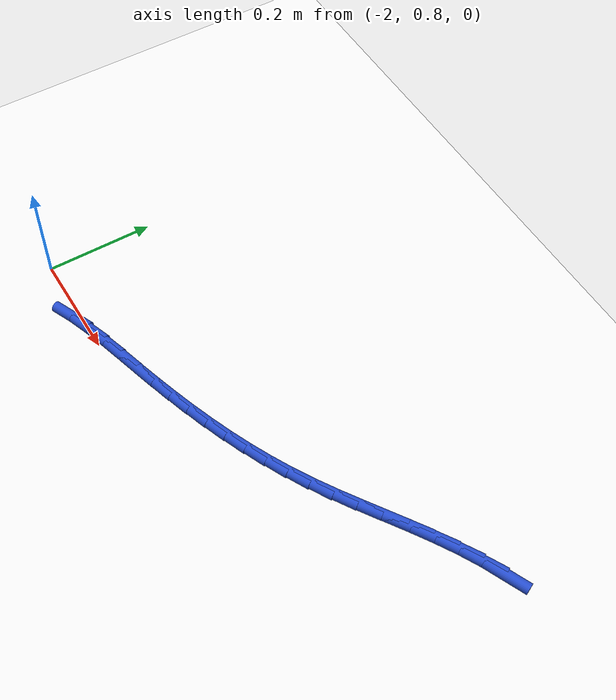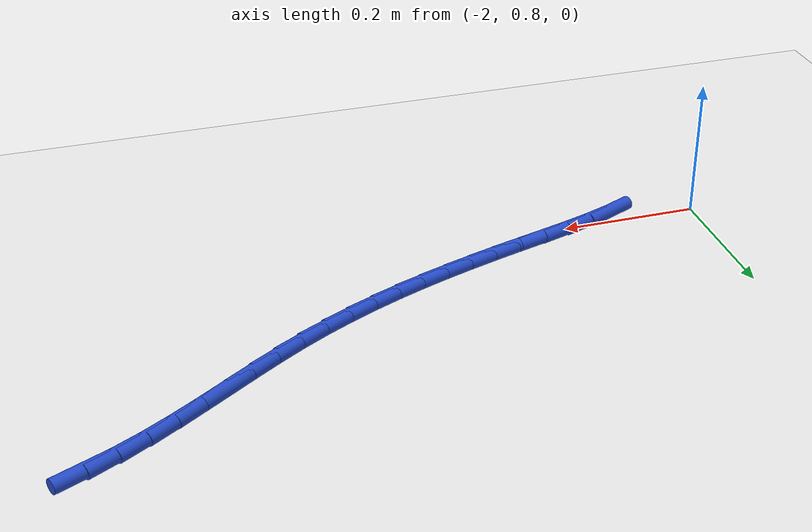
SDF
<sdf version="1.6">
 <world name="default">
  <model name="ground_plane">
   <static>1</static>
   <link name="link">
    <collision name="collision">
     <geometry><plane><normal>0 0 1</normal><size>100 100</size></plane></geometry>
     <surface><friction><ode><mu>100</mu><mu2>50</mu2></ode></friction></surface>
    </collision>
    <visual name="visual">
     <cast_shadows>0</cast_shadows>
     <geometry><plane><normal>0 0 1</normal><size>100 100</size></plane></geometry>
     <material>
      <script><uri>file://media/materials/scripts/gazebo.material</uri><name>Gazebo/WhiteGlow</name></script>
     </material>
    </visual>
   </link>
  </model>
  <model name="line">
   <link name="link_42">
    <pose>-1.079491086505613 1.1542731714893821 0.01 0 1.57 0.42457420445043403</pose>
    <collision name="collision">
     <geometry><cylinder><radius>0.01</radius><length>0.08</length></cylinder></geometry>
    </collision>
    <visual name="visual">
     <material>
      <script><name>Gazebo/Blue</name><uri>file://media/materials/scripts/gazebo.material</uri></script>
     </material>
     <geometry><cylinder><radius>0.01</radius><length>0.08</length></cylinder></geometry>
    </visual>
   </link>
   <link name="link_43">
    <pose>-1.1167946746756232 1.1374093294569938 0.01 0 1.57 0.491533177553739</pose>
    <collision name="collision">
     <geometry><cylinder><radius>0.01</radius><length>0.08</length></cylinder></geometry>
    </collision>
    <visual name="visual">
     <material>
      <script><name>Gazebo/Blue</name><uri>file://media/materials/scripts/gazebo.material</uri></script>
     </material>
     <geometry><cylinder><radius>0.01</radius><length>0.08</length></cylinder></geometry>
    </visual>
   </link>
   <link name="link_44">
    <pose>-1.1535117032391695 1.1177525329505622 0.01 0 1.57 0.5409676290574882</pose>
    <collision name="collision">
     <geometry><cylinder><radius>0.01</radius><length>0.08</length></cylinder></geometry>
    </collision>
    <visual name="visual">
     <material>
      <script><name>Gazebo/Blue</name><uri>file://media/materials/scripts/gazebo.material</uri></script>
     </material>
     <geometry><cylinder><radius>0.01</radius><length>0.08</length></cylinder></geometry>
    </visual>
   </link>
   <link name="link_45">
    <pose>-1.1897817817251504 1.095963439244443 0.01 0 1.57 0.5741230505601602</pose>
    <collision name="collision">
     <geometry><cylinder><radius>0.01</radius><length>0.08</length></cylinder></geometry>
    </collision>
    <visual name="visual">
     <material>
      <script><name>Gazebo/Blue</name><uri>file://media/materials/scripts/gazebo.material</uri></script>
     </material>
     <geometry><cylinder><radius>0.01</radius><length>0.08</length></cylinder></geometry>
    </visual>
   </link>
   <link name="link_46">
    <pose>-1.2257445196624617 1.0727027056129914 0.01 0 1.57 0.5920220072797028</pose>
    <collision name="collision">
     <geometry><cylinder><radius>0.01</radius><length>0.08</length></cylinder></geometry>
    </collision>
    <visual name="visual">
     <material>
      <script><name>Gazebo/Blue</name><uri>file://media/materials/scripts/gazebo.material</uri></script>
     </material>
     <geometry><cylinder><radius>0.01</radius><length>0.08</length></cylinder></geometry>
    </visual>
   </link>
   <link name="link_47">
    <pose>-1.2615395265800036 1.0486309893305636 0.01 0 1.57 0.5952730524551635</pose>
    <collision name="collision">
     <geometry><cylinder><radius>0.01</radius><length>0.08</length></cylinder></geometry>
    </collision>
    <visual name="visual">
     <material>
      <script><name>Gazebo/Blue</name><uri>file://media/materials/scripts/gazebo.material</uri></script>
     </material>
     <geometry><cylinder><radius>0.01</radius><length>0.08</length></cylinder></geometry>
    </visual>
   </link>
   <link name="link_48">
    <pose>-1.2973064120066715 1.0244089476715155 0.01 0 1.57 0.5839937026788297</pose>
    <collision name="collision">
     <geometry><cylinder><radius>0.01</radius><length>0.08</length></cylinder></geometry>
    </collision>
    <visual name="visual">
     <material>
      <script><name>Gazebo/Blue</name><uri>file://media/materials/scripts/gazebo.material</uri></script>
     </material>
     <geometry><cylinder><radius>0.01</radius><length>0.08</length></cylinder></geometry>
    </visual>
   </link>
   <link name="link_49">
    <pose>-1.333184785471364 1.0006972379102024 0.01 0 1.57 0.5577988449191743</pose>
    <collision name="collision">
     <geometry><cylinder><radius>0.01</radius><length>0.08</length></cylinder></geometry>
    </collision>
    <visual name="visual">
     <material>
      <script><name>Gazebo/Blue</name><uri>file://media/materials/scripts/gazebo.material</uri></script>
     </material>
     <geometry><cylinder><radius>0.01</radius><length>0.08</length></cylinder></geometry>
    </visual>
   </link>
   <link name="link_50">
    <pose>-1.3693142563289775 0.9781565161938238 0.01 0 1.57 0.519111660124548</pose>
    <collision name="collision">
     <geometry><cylinder><radius>0.01</radius><length>0.08</length></cylinder></geometry>
    </collision>
    <visual name="visual">
     <material>
      <script><name>Gazebo/Blue</name><uri>file://media/materials/scripts/gazebo.material</uri></script>
     </material>
     <geometry><cylinder><radius>0.01</radius><length>0.08</length></cylinder></geometry>
    </visual>
   </link>
   <link name="link_51">
    <pose>-1.4058120305278754 0.9573023133007899 0.01 0 1.57 0.47975570111447596</pose>
    <collision name="collision">
     <geometry><cylinder><radius>0.01</radius><length>0.08</length></cylinder></geometry>
    </collision>
    <visual name="visual">
     <material>
      <script><name>Gazebo/Blue</name><uri>file://media/materials/scripts/gazebo.material</uri></script>
     </material>
     <geometry><cylinder><radius>0.01</radius><length>0.08</length></cylinder></geometry>
    </visual>
   </link>
   <link name="link_52">
    <pose>-1.4427109681783776 0.9381037823487952 0.01 0 1.57 0.4429788780883179</pose>
    <collision name="collision">
     <geometry><cylinder><radius>0.01</radius><length>0.08</length></cylinder></geometry>
    </collision>
    <visual name="visual">
     <material>
      <script><name>Gazebo/Blue</name><uri>file://media/materials/scripts/gazebo.material</uri></script>
     </material>
     <geometry><cylinder><radius>0.01</radius><length>0.08</length></cylinder></geometry>
    </visual>
   </link>
   <link name="link_53">
    <pose>-1.4800240833235068 0.9204015170852705 0.01 0 1.57 0.4091592773785062</pose>
    <collision name="collision">
     <geometry><cylinder><radius>0.01</radius><length>0.08</length></cylinder></geometry>
    </collision>
    <visual name="visual">
     <material>
      <script><name>Gazebo/Blue</name><uri>file://media/materials/scripts/gazebo.material</uri></script>
     </material>
     <geometry><cylinder><radius>0.01</radius><length>0.08</length></cylinder></geometry>
    </visual>
   </link>
   <link name="link_54">
    <pose>-1.517764390006287 0.9040361112576462 0.01 0 1.57 0.37860261845492205</pose>
    <collision name="collision">
     <geometry><cylinder><radius>0.01</radius><length>0.08</length></cylinder></geometry>
    </collision>
    <visual name="visual">
     <material>
      <script><name>Gazebo/Blue</name><uri>file://media/materials/scripts/gazebo.material</uri></script>
     </material>
     <geometry><cylinder><radius>0.01</radius><length>0.08</length></cylinder></geometry>
    </visual>
   </link>
   <link name="link_55">
    <pose>-1.555944902269741 0.888848158613351 0.01 0 1.57 0.35154071192672415</pose>
    <collision name="collision">
     <geometry><cylinder><radius>0.01</radius><length>0.08</length></cylinder></geometry>
    </collision>
    <visual name="visual">
     <material>
      <script><name>Gazebo/Blue</name><uri>file://media/materials/scripts/gazebo.material</uri></script>
     </material>
     <geometry><cylinder><radius>0.01</radius><length>0.08</length></cylinder></geometry>
    </visual>
   </link>
   <link name="link_56">
    <pose>-1.5945786341568913 0.8746782528998158 0.01 0 1.57 0.3281345281221142</pose>
    <collision name="collision">
     <geometry><cylinder><radius>0.01</radius><length>0.08</length></cylinder></geometry>
    </collision>
    <visual name="visual">
     <material>
      <script><name>Gazebo/Blue</name><uri>file://media/materials/scripts/gazebo.material</uri></script>
     </material>
     <geometry><cylinder><radius>0.01</radius><length>0.08</length></cylinder></geometry>
    </visual>
   </link>
   <link name="link_57">
    <pose>-1.6336785997107617 0.8613669878644705 0.01 0 1.57 0.30848048596203403</pose>
    <collision name="collision">
     <geometry><cylinder><radius>0.01</radius><length>0.08</length></cylinder></geometry>
    </collision>
    <visual name="visual">
     <material>
      <script><name>Gazebo/Blue</name><uri>file://media/materials/scripts/gazebo.material</uri></script>
     </material>
     <geometry><cylinder><radius>0.01</radius><length>0.08</length></cylinder></geometry>
    </visual>
   </link>
   <link name="link_58">
    <pose>-1.6732578129743763 0.848754957254745 0.01 0 1.57 0.29261853093962426</pose>
    <collision name="collision">
     <geometry><cylinder><radius>0.01</radius><length>0.08</length></cylinder></geometry>
    </collision>
    <visual name="visual">
     <material>
      <script><name>Gazebo/Blue</name><uri>file://media/materials/scripts/gazebo.material</uri></script>
     </material>
     <geometry><cylinder><radius>0.01</radius><length>0.08</length></cylinder></geometry>
    </visual>
   </link>
   <link name="link_59">
    <pose>-1.7133292879907558 0.8366827548180692 0.01 0 1.57 0.2820205276368981</pose>
    <collision name="collision">
     <geometry><cylinder><radius>0.01</radius><length>0.08</length></cylinder></geometry>
    </collision>
    <visual name="visual">
     <material>
      <script><name>Gazebo/Blue</name><uri>file://media/materials/scripts/gazebo.material</uri></script>
     </material>
     <geometry><cylinder><radius>0.01</radius><length>0.08</length></cylinder></geometry>
    </visual>
   </link>
   <link name="link_60">
    <pose>-1.7538559603219255 0.8249404270721054 0.01 0 1.57 0.2867878664182833</pose>
    <collision name="collision">
     <geometry><cylinder><radius>0.01</radius><length>0.08</length></cylinder></geometry>
    </collision>
    <visual name="visual">
     <material>
      <script><name>Gazebo/Blue</name><uri>file://media/materials/scripts/gazebo.material</uri></script>
     </material>
     <geometry><cylinder><radius>0.01</radius><length>0.08</length></cylinder></geometry>
    </visual>
   </link>
   <link name="link_61">
    <pose>-1.7944534842075353 0.8129674885605879 0.01 0 1.57 0.31125611164915234</pose>
    <collision name="collision">
     <geometry><cylinder><radius>0.01</radius><length>0.08</length></cylinder></geometry>
    </collision>
    <visual name="visual">
     <material>
      <script><name>Gazebo/Blue</name><uri>file://media/materials/scripts/gazebo.material</uri></script>
     </material>
     <geometry><cylinder><radius>0.01</radius><length>0.08</length></cylinder></geometry>
    </visual>
   </link>
   <link name="link_62">
    <pose>-1.8345903665537737 0.8000549291530666 0.01 0 1.57 0.3561396616481073</pose>
    <collision name="collision">
     <geometry><cylinder><radius>0.01</radius><length>0.08</length></cylinder></geometry>
    </collision>
    <visual name="visual">
     <material>
      <script><name>Gazebo/Blue</name><uri>file://media/materials/scripts/gazebo.material</uri></script>
     </material>
     <geometry><cylinder><radius>0.01</radius><length>0.08</length></cylinder></geometry>
    </visual>
   </link>
   <link name="link_63">
    <pose>-1.873734584127282 0.7854932036172853 0.01 0 1.57 0.42266929820918164</pose>
    <collision name="collision">
     <geometry><cylinder><radius>0.01</radius><length>0.08</length></cylinder></geometry>
    </collision>
    <visual name="visual">
     <material>
      <script><name>Gazebo/Blue</name><uri>file://media/materials/scripts/gazebo.material</uri></script>
     </material>
     <geometry><cylinder><radius>0.01</radius><length>0.08</length></cylinder></geometry>
    </visual>
   </link>
  </model>
 </world>
</sdf>
